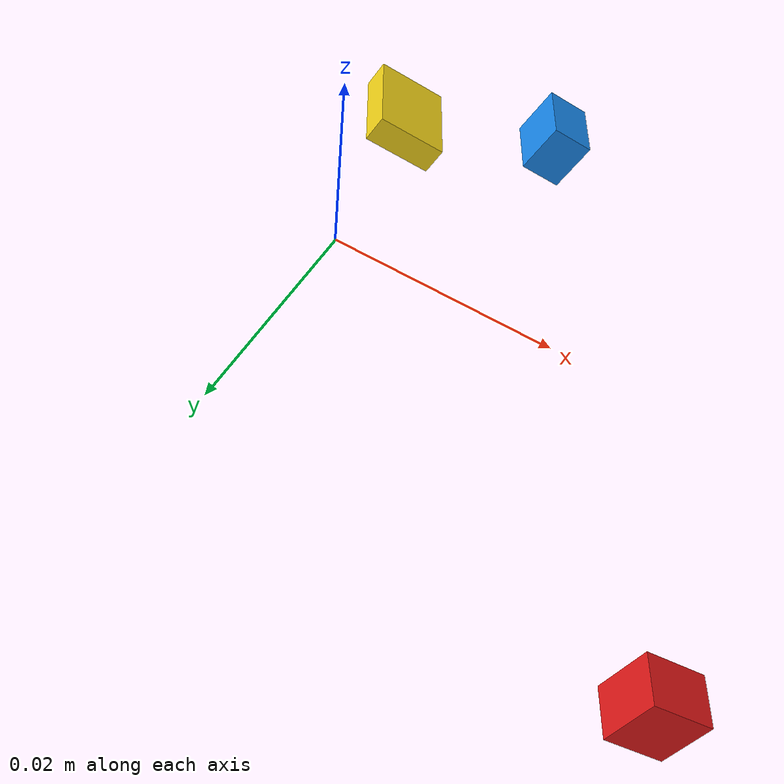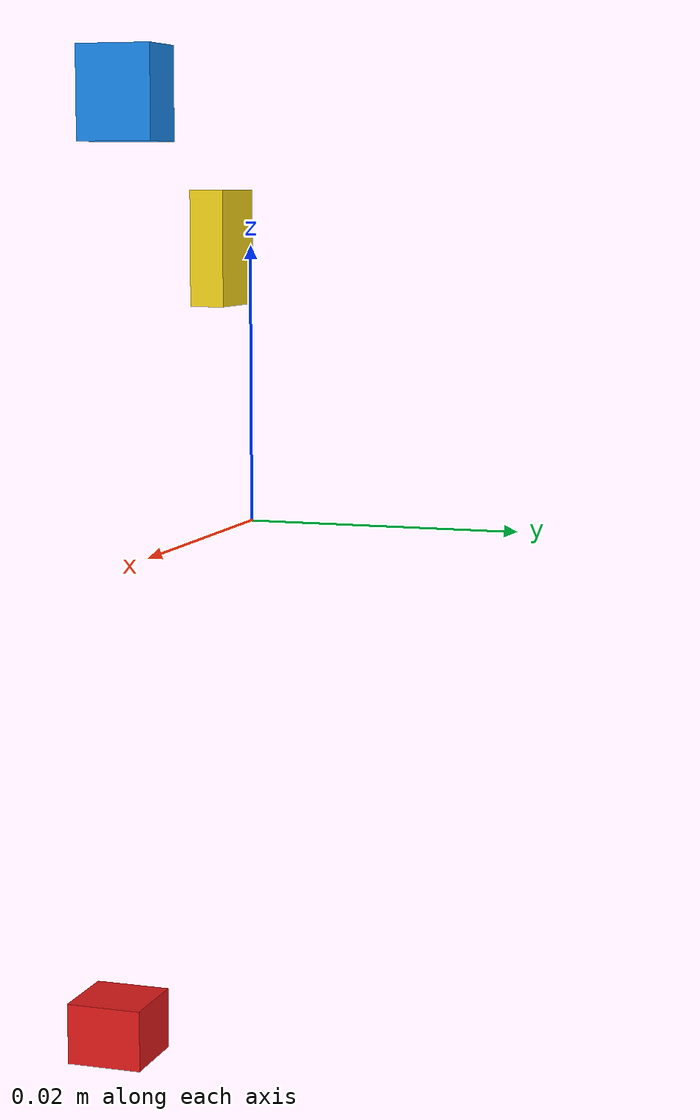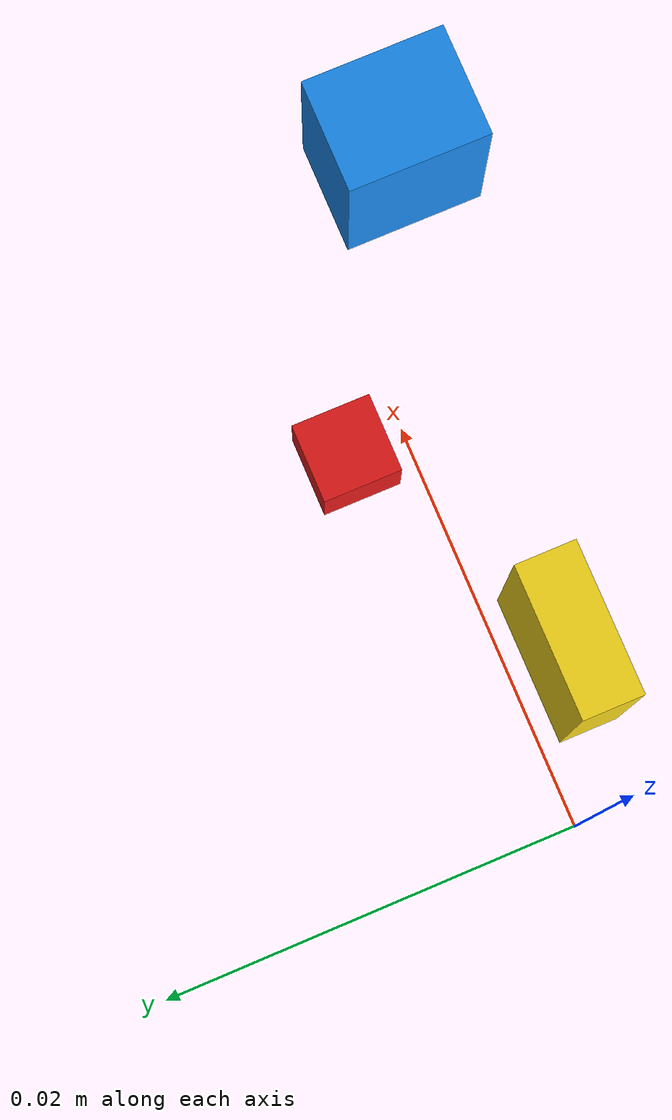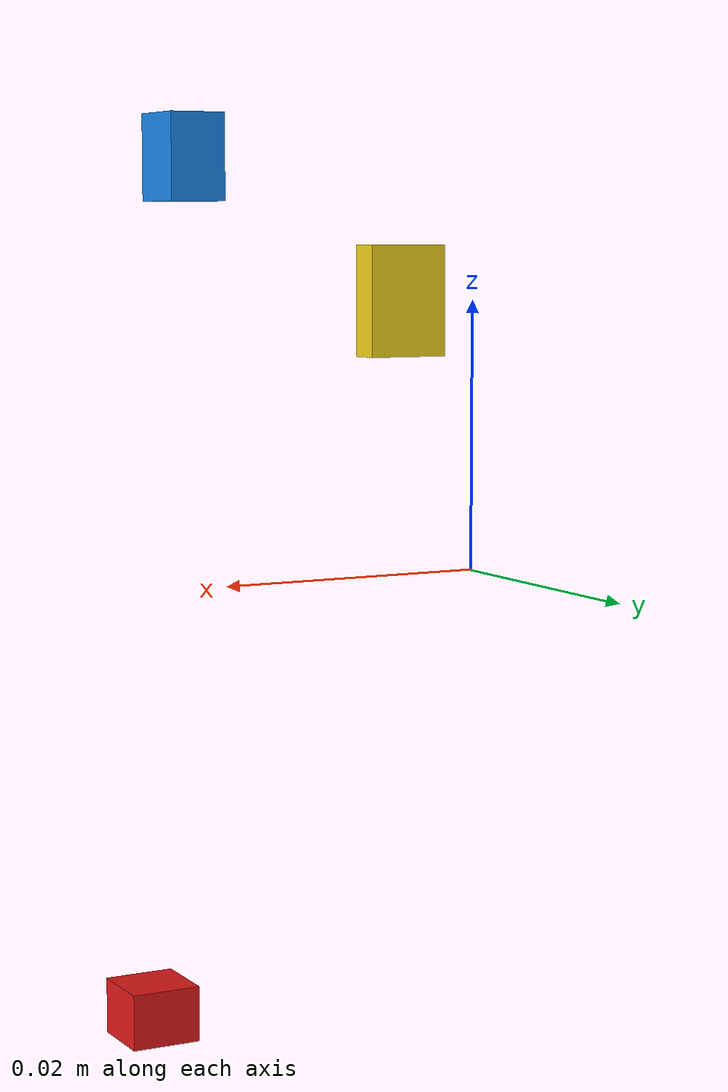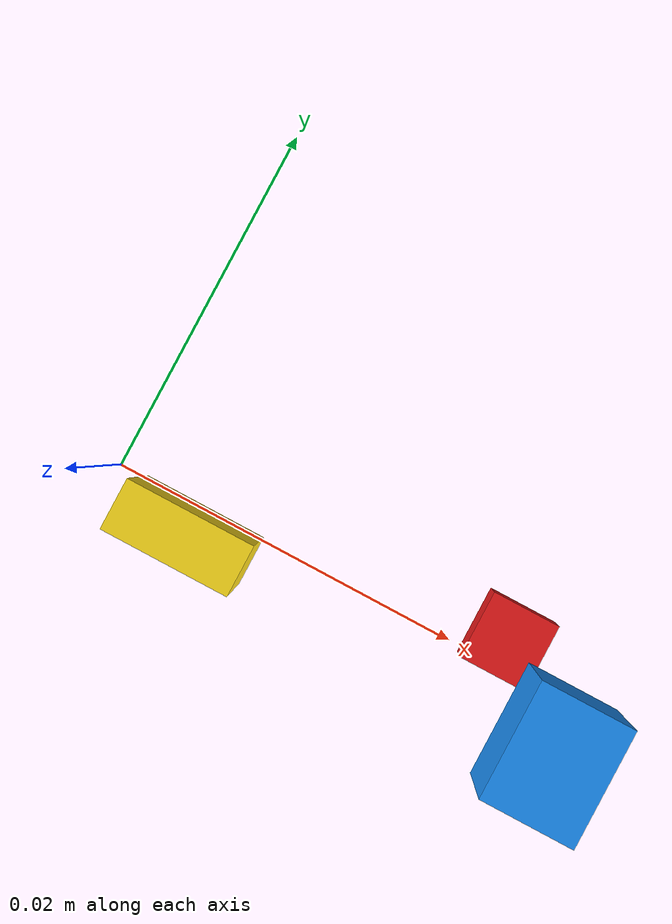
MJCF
<?xml version="1.0" ?>
<mujoco model="t2_screw_lift_bare">
  <compiler angle="radian" autolimits="true" meshdir="/home/ftk3187/github/ASSY/m24_design_closure/out/mesh_assets"/>
  <option timestep="0.0001" integrator="implicitfast" cone="elliptic" impratio="10" gravity="0 0 0"/>
  <visual>
    <headlight ambient="0.5 0.5 0.5" diffuse="0.6 0.6 0.6" specular="0.2 0.2 0.2"/>
    <global offwidth="1280" offheight="960"/>
  </visual>
  <default>
    <geom density="0" contype="0" conaffinity="0" group="2"/>
  </default>
  <asset>
    <material name="base" rgba="0.62 0.66 0.72 1"/>
    <material name="crank" rgba="0.85 0.35 0.35 1"/>
    <material name="screw" rgba="0.95 0.62 0.25 1"/>
    <material name="nut" rgba="0.45 0.78 0.5 1"/>
    <material name="mk_crank" rgba="0.90 0.10 0.10 1"/>
    <material name="mk_screw" rgba="0.98 0.85 0.10 1"/>
    <material name="mk_nut" rgba="0.10 0.55 0.95 1"/>
  </asset>
  <worldbody>
    <light pos="0.1 -0.2 0.4" dir="-0.2 0.3 -1" directional="true" diffuse="0.5 0.5 0.5"/>
    <camera name="side" pos="0.19 -0.24 0.055" xyaxes="0.78 0.62 0 -0.14 0.18 0.98"/>
    <camera name="iso" pos="0.16 -0.16 0.10" xyaxes="0.71 0.71 0 -0.35 0.35 0.87"/>
    <body name="crank" pos="0 0 0">
      <inertial mass="0.014000000" pos="0.005000000 0.000000000 -0.024428571" quat="0.356576982 0.610616783 0.610616783 0.356576982" diaginertia="1.776113571e-06 1.422011674e-06 4.546852309e-07"/>
      <joint name="crank_hinge" type="hinge" axis="0 0 1" pos="0 0 0" damping="1e-05" armature="1e-05"/>
      <geom name="mk_crank" type="box" pos="0.026000 0.000000 -0.030000" size="0.002500 0.002500 0.002000" material="mk_crank"/>
    </body>
    <body name="screw" pos="0 0 0">
      <inertial mass="0.014000000" pos="0.000000000 0.000000000 0.019428571" quat="1.000000000 0.000000000 0.000000000 0.000000000" diaginertia="7.041011905e-06 7.041011905e-06 1.925000000e-07"/>
      <joint name="screw_hinge" type="hinge" axis="0 0 1" pos="0 0 0" damping="1e-05" armature="1e-05" frictionloss="0.005150250"/>
      <geom name="mk_screw" type="box" pos="0.006000 0.000000 0.020000" size="0.003000 0.001200 0.004000" material="mk_screw"/>
    </body>
    <body name="nut" pos="0 0 0">
      <inertial mass="0.020000000" pos="0.000000000 0.000000000 0.030000000" quat="1.000000000 0.000000000 0.000000000 0.000000000" diaginertia="1.233333333e-06 1.233333333e-06 2.253333333e-06"/>
      <joint name="nut_slide" type="slide" axis="0 0 1" pos="0 0 0" damping="1e-05"/>
      <geom name="mk_nut" type="box" pos="0.023000 0.000000 0.030000" size="0.002000 0.002500 0.003000" material="mk_nut"/>
    </body>
  </worldbody>
  <equality>
    <joint name="couple_cs" joint1="screw_hinge" joint2="crank_hinge" polycoef="0 1.0 0 0 0" solref="-1e8 -1e4" solimp="0.9999 0.99999 1e-6 0.5 2"/>
    <joint name="couple_sn" joint1="nut_slide" joint2="screw_hinge" polycoef="0 0.000318310 0 0 0" solref="-1e8 -1e4" solimp="0.9999 0.99999 1e-6 0.5 2"/>
  </equality>
  <actuator>
    <velocity name="drive" joint="crank_hinge" kv="0.5"/>
  </actuator>
</mujoco>
